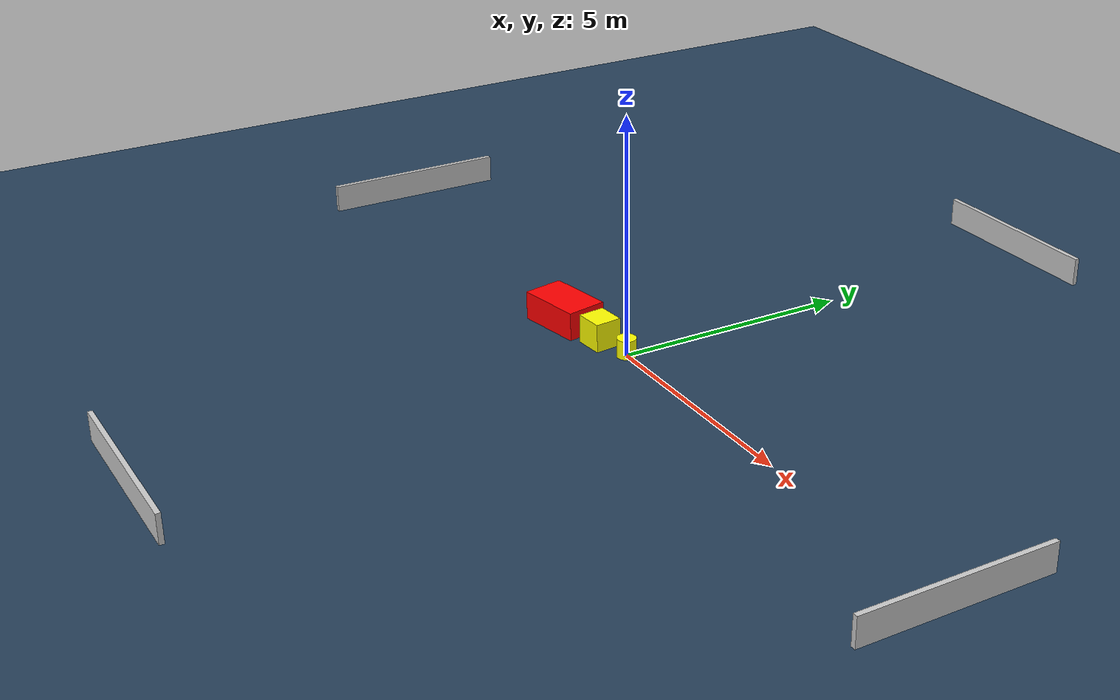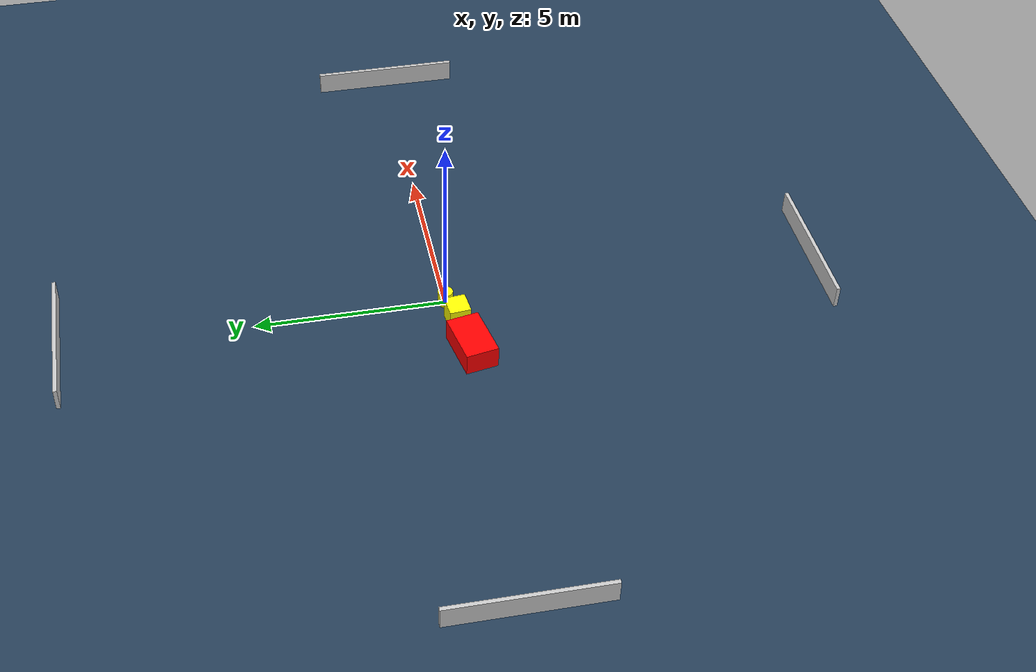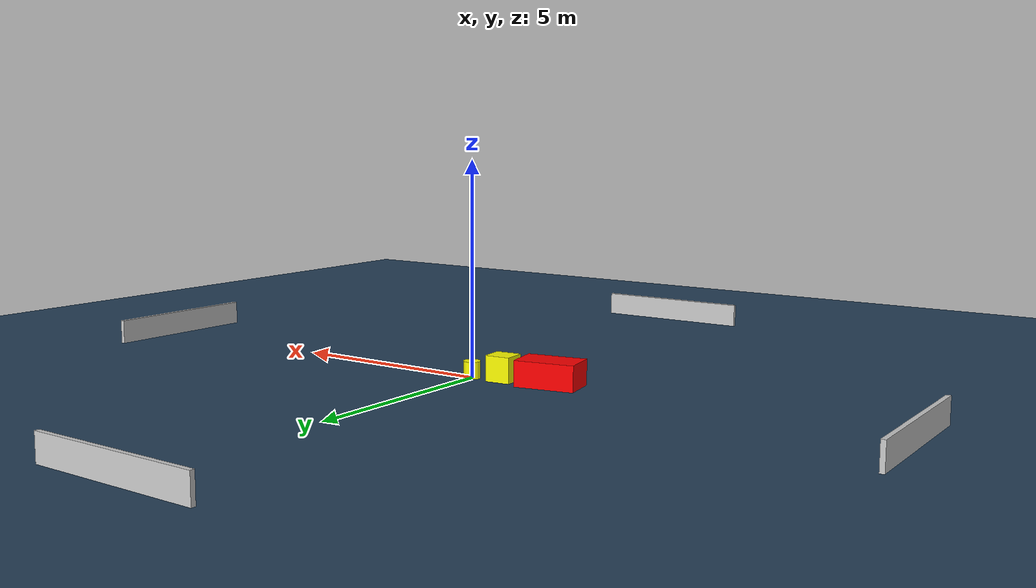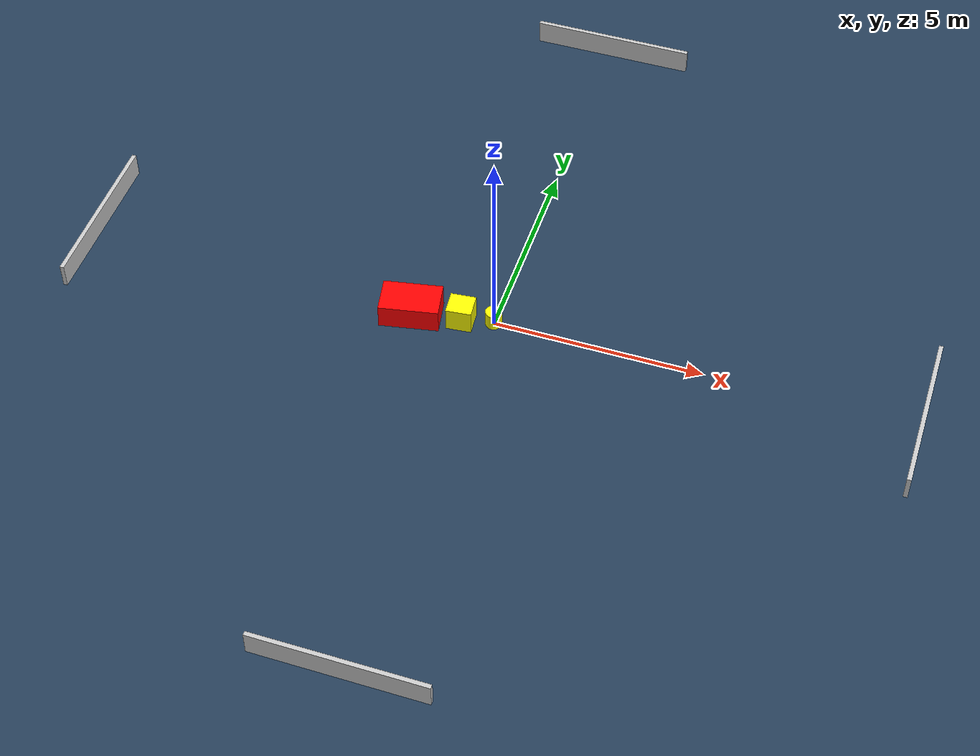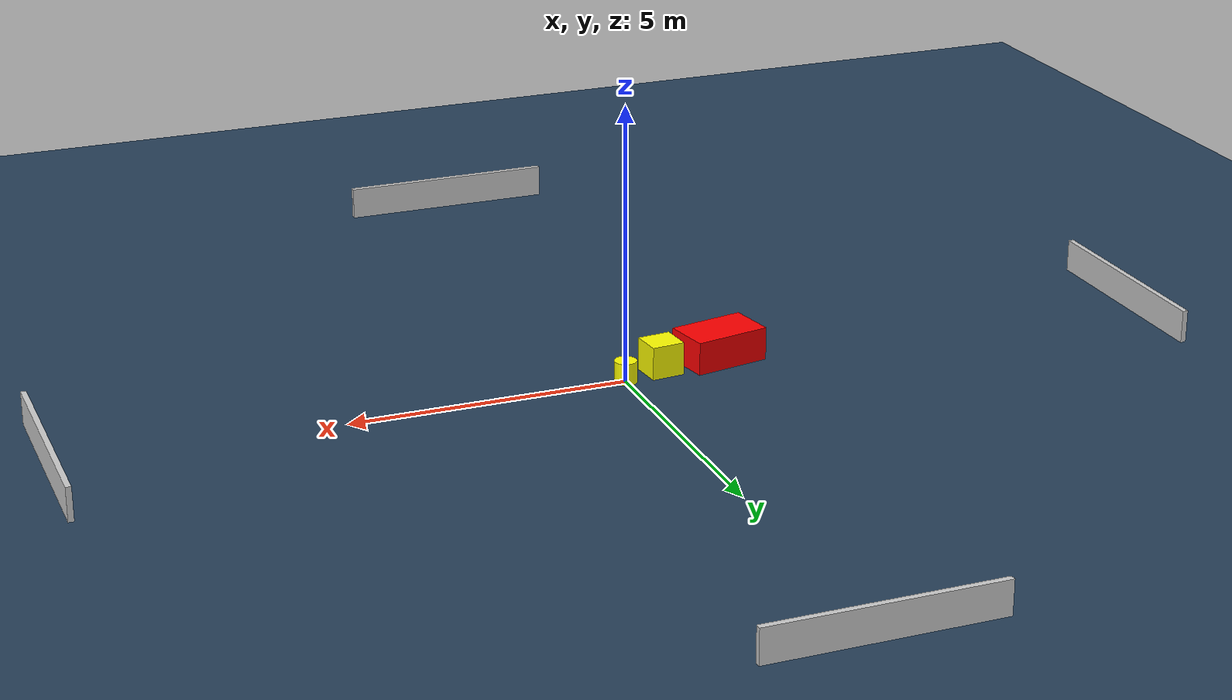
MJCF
<?xml version="1.0" ?>
<mujoco model="generated_environment">
  <option timestep="0.01" integrator="RK4" cone="elliptic"/>
  <default>
    <geom density="1"/>
  </default>
  <asset>
    <texture builtin="gradient" height="3072" name="skybox" rgb1="0.3 0.5 0.7" rgb2="0 0 0" type="skybox" width="512"/>
    <texture builtin="checker" height="300" name="groundplane" rgb1="0.2 0.3 0.4" rgb2="0.1 0.2 0.3" type="2d" width="300"/>
    <material name="groundplane" reflectance="0.2" texrepeat="5 5" texture="groundplane"/>
  </asset>
  <worldbody>
    <light dir="0 0 -1" directional="true" pos="0 0 1.5"/>
    <geom condim="3" friction="0.5 0.005 0.001" material="groundplane" name="floor" pos="0 0 0" size="0 0 0.05" type="plane"/>
    <body name="walls">
      <geom name="wall_1" condim="4" pos="-10.0 0.0 0.3" rgba="0.800000011920929 0.800000011920929 0.800000011920929 1.0" size="0.05 2.0 0.3" type="box"/>
      <geom name="wall_2" condim="4" pos="10.0 0.0 0.3" rgba="0.800000011920929 0.800000011920929 0.800000011920929 1.0" size="0.05 2.0 0.3" type="box"/>
      <geom name="wall_3" condim="4" pos="0.0 -10.0 0.3" rgba="0.800000011920929 0.800000011920929 0.800000011920929 1.0" size="2.0 0.05 0.3" type="box"/>
      <geom name="wall_4" condim="4" pos="0.0 10.0 0.3" rgba="0.800000011920929 0.800000011920929 0.800000011920929 1.0" size="2.0 0.05 0.3" type="box"/>
    </body>
    <body name="robot">
      <joint name="joint_x" type="slide" pos="0 0 0" axis="1 0 0"/>
      <joint name="joint_y" type="slide" pos="0 0 0" axis="0 1 0"/>
      <geom name="robot" type="cylinder" pos="0.0 0.0 0.2" size="0.2 0.2 0.0" mass="5.0" friction="1.0 0.005 0.0001" condim="4" rgba="1.0 1.0 0.0 1.0"/>
    </body>
    <body name="obstacle_1_movable">
      <geom name="obstacle_1_movable" condim="4" pos="-0.7380670525522558 -0.18267248777156847 0.3" euler="0 0 5.401411229212414" friction="0.0 0.005 0.001" rgba="1.0 1.0 0.0 1.0" size="0.30028872126623357 0.2808649756178153 0.3" type="box" mass="0.1"/>
      <joint type="free"/>
    </body>
    <body name="obstacle_2_static">
      <geom name="obstacle_2_static" condim="4" pos="-1.912479437652198 -0.3372738936851492 0.3" euler="0 0 190.68038207890675" friction="0.0 0.005 0.001" rgba="1.0 0.0 0.0 1.0" size="0.7029529335332334 0.43159397122418347 0.3" type="box"/>
    </body>
  </worldbody>
  <actuator>
    <motor name="actuator_x" joint="joint_x" gear="1" ctrlrange="-1 1"/>
    <motor name="actuator_y" joint="joint_y" gear="1" ctrlrange="-1 1"/>
  </actuator>
</mujoco>
